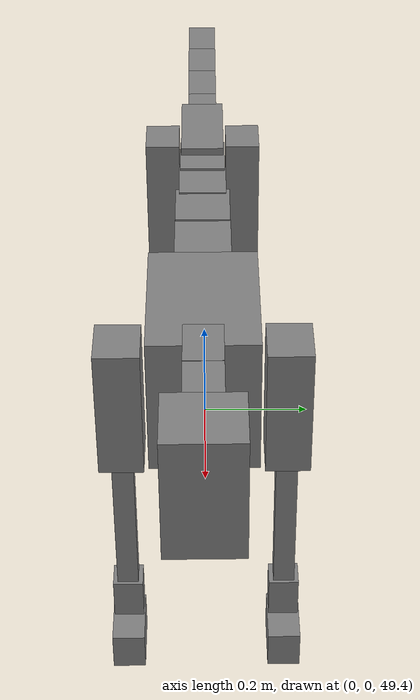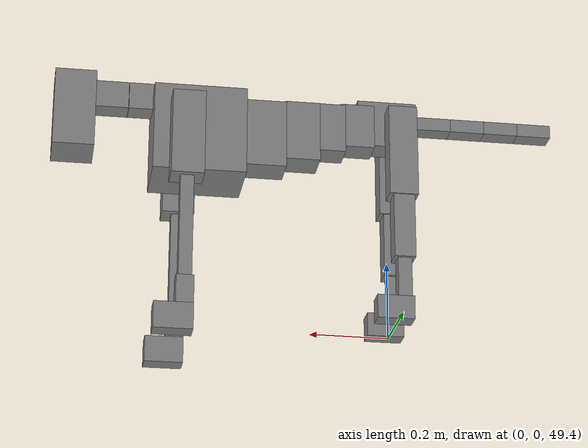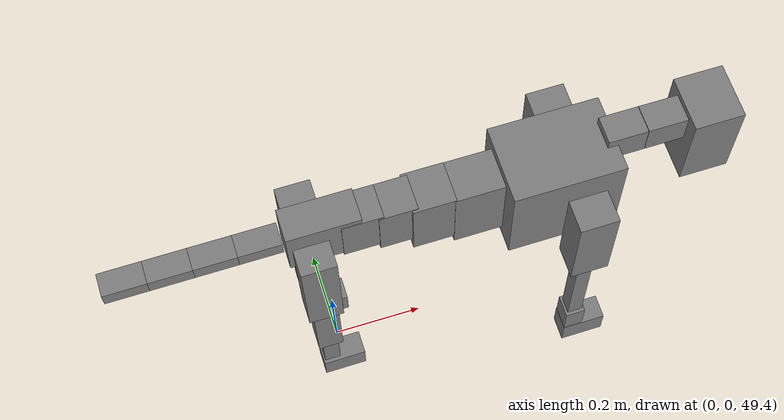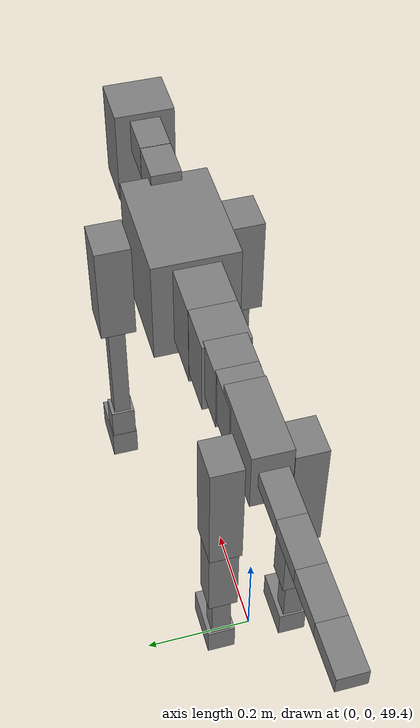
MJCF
<mujoco model="dog">

    <default>
        <joint armature="0.02" stiffness="1" damping="0.2" limited="true"/>
        <geom condim="3" friction="1 0.05 0.05" margin="0.01"/>
        <motor ctrllimited="true" ctrlrange="-1.0 1.0" forcelimited="true" gear="50"/>
    </default>

    <compiler inertiafromgeom="true" angle="radian"/>

    <option timestep="0.016" iterations="50" tolerance="1e-10" solver="Newton" jacobian="dense" cone="pyramidal"/>

    <size nconmax="20000" njmax="60000" nstack="5000000"/>
    <visual>
        <map force="0.1" zfar="30"/>
        <rgba haze="0.15 0.25 0.35 1"/>
        <quality shadowsize="2048"/>
        <global offwidth="800" offheight="800"/>
    </visual>

    <asset>
        <texture type="skybox" builtin="gradient" rgb1="0.3 0.5 0.7" rgb2="0 0 0" width="512" height="512"/>
        <texture name="texplane" type="2d" builtin="checker" rgb1=".2 .3 .4" rgb2=".1 0.15 0.2" width="512" height="512"
                 mark="cross" markrgb=".8 .8 .8"/>
        <texture name="texgeom" type="cube" builtin="flat" mark="cross" width="127" height="1278" rgb1="0.8 0.6 0.4"
                 rgb2="0.8 0.6 0.4" markrgb="1 1 1" random="0.01"/>

        <material name="matplane" reflectance="0.3" texture="texplane" texrepeat="1 1" texuniform="true"/>
        <material name="matgeom" texture="texgeom" texuniform="true" rgba="0.8 0.6 .4 1"/>
    </asset>

    <worldbody>
        <geom name="floor" pos="0 0 0" size="0 0 .25" type="plane" material="matplane" condim="3"/>

        <light directional="false" diffuse=".2 .2 .2" specular="0 0 0" pos="0 0 5" dir="0 0 -1" castshadow="false"/>
        <light mode="targetbodycom" target="torso" directional="false" diffuse=".8 .8 .8" specular="0.3 0.3 0.3"
               pos="0 0 4.0" dir="0 0 -1"/>

        <body name="root" pos="0 0 50">
            <freejoint name="root_1"/>
            <geom type="box" pos="0 0 -0.02" size="0.0774  0.0358  0.063" density="2030"/>

            <body name="spine1" pos="0.054 0 0">
                <joint name="spine1_y" axis="0 1 0" range="0 0.7" limited="true"/>
                <geom type="box" pos="0.02375 0 -0.03" size="0.04375  0.0375  0.05985" density="2030"/>

                <body name="spine2" pos="0.0612 0 0">
                    <joint name="spine2_y" axis="0 1 0" range="-0.15 0.15" limited="true"/>
                    <geom type="box" pos="0.03555  0  -0.04" size="0.04055  0.039  0.06615" density="2030"/>

                    <body name="spine3" pos="0.0730 0 0">
                        <joint name="spine3_y" axis="0 1 0" range="-0.15 0.15" limited="true"/>
                        <geom type="box" pos="0.03555  0  -0.057" size="0.04555  0.0445  0.081" density="2030"/>

                        <body name="spine4" pos="0.0780 0 0">
                            <joint name="spine4_y" axis="0 1 0" range="-0.15 0.15" limited="true"/>
                            <geom type="box" pos="0.05265  0  -0.07" size="0.05265  0.045  0.09135" density="2030"/>

                            <body name="torso" pos="0.1082 0 0">
                                <joint name="torso_y" axis="0 1 0" range="-0.15 0.15" limited="true"/>
                                <geom type="box" pos="0.11925  0  -0.085" size="0.11925  0.085  0.11745"
                                      density="2030"/>

                                <body name="neck1" pos="0.2160  0   0.0180">
                                    <joint name="neck1_y" axis="0 1 0" range="-1.2  -1" limited="true"/>
                                    <geom type="box" pos="0.0423  0  0" size="0.0423  0.03  0.036" density="2325"/>

                                    <body name="neck2" pos="0.0853  0  0">
                                        <joint name="neck2_y" axis="0 1 0" range="0.1  0" limited="true"/>
                                        <geom type="box" pos="0.0423  0  0" size="0.0423  0.03  0.036" density="2325"/>

                                        <body name="head" pos="0.0853  0  0">
                                            <joint name="head_y" axis="0 1 0" range="-0.3  -0.2" limited="true"/>
                                            <geom type="box" pos="0.0531  0  -0.055" size="0.0531  0.06  0.1044"
                                                  density="4030"/>

                                        </body>
                                    </body>
                                </body>

                                <body name="front_shoulder" pos="0.156  0   -0.0480">
                                    <joint name="front_shoulder_y" axis="0 1 0" range="-1 1.5" limited="true"/>
                                    <geom type="box" pos="0 0.13 -0.0863" size="0.0416  0.0355  0.1129" density="1158"/>
                                    <geom type="box" pos="0 -0.13 -0.0863" size="0.0416  0.0355  0.1129"
                                          density="1158"/>

                                    <body name="front_elbow" pos="0  0  -0.1725">
                                        <joint name="front_elbow_y" axis="0 1 0" range="-2 0" limited="true"/>
                                        <geom type="box" pos="0 0.13 -0.1535" size="0.0169  0.0173  0.1535"
                                              density="1081"/>
                                        <geom type="box" pos="0 -0.13 -0.1535" size="0.0169  0.0173  0.1535"
                                              density="1081"/>

                                        <body name="front_wrist" pos="0  0  -0.3069">
                                            <joint name="front_wrist_y" axis="0 1 0" range="-0.2 0" limited="true"/>
                                            <geom type="box" pos="0 0.13 -0.0373" size="0.0222  0.0247  0.0504"
                                                  density="1664"/>
                                            <geom type="box" pos="0 -0.13 -0.0373" size="0.0222  0.0247  0.0504"
                                                  density="1664"/>

                                            <body name="front_finger_end" pos="0  0  -0.0745">
                                                <joint name="front_finger_y" axis="0 1 0" range="-0.4 1"
                                                       limited="true"/>
                                                <geom type="box" pos="0.0267  0.13  -0.0189"
                                                      size="0.0490  0.0267  0.0339" density="1515"/>
                                                <geom type="box" pos="0.0267  -0.13  -0.0189"
                                                      size="0.0490  0.0267  0.0339" density="1515"/>

                                            </body>

                                        </body>
                                    </body>
                                </body>

                            </body>
                        </body>
                    </body>
                </body>
            </body>

            <body name="back_hip" pos="-0.03 0 -0.018">
                <joint name="back_hip_y" axis="0 1 0" range="-1.5 0.3" limited="true"/>
                <geom type="box" pos="0 0.07 -0.1001" size="0.0372  0.0292  0.1229" density="1154"/>
                <geom type="box" pos="0 -0.07 -0.1001" size="0.0372  0.0292  0.1229" density="1154"/>

                <body name="back_knee" pos="0  0  -0.2003">
                    <joint name="back_knee_y" axis="0 1 0" range="0 2.8" limited="true"/>
                    <geom type="box" pos="0 0.07 -0.0886" size="0.0272  0.0268  0.1042" density="1227"/>
                    <geom type="box" pos="0 -0.07 -0.0886" size="0.0272  0.0268  0.1042" density="1227"/>

                    <body name="back_ankle" pos="0  0  -0.1772">
                        <joint name="back_ankle_y" axis="0 1 0" range="-2.2 0" limited="true"/>
                        <geom type="box" pos="0 0.07 -0.0681" size="0.0178  0.0178  0.0794" density="1284"/>
                        <geom type="box" pos="0 -0.07 -0.0681" size="0.0178  0.0178  0.0794" density="1284"/>

                        <body name="back_toe_end" pos="0  0  -0.1362">
                            <joint name="back_toe_y" axis="0 1 0" range="-0.4 1" limited="true"/>
                            <geom type="box" pos="0.0258  0.07  -0.0154" size="0.0473  0.0258  0.0304" density="1515"/>
                            <geom type="box" pos="0.0258  -0.07  -0.0154" size="0.0473  0.0258  0.0304" density="1515"/>

                        </body>
                    </body>
                </body>
            </body>

            <body name="tail1" pos="-0.074 0 -0.006">
                <joint name="tail1_y" axis="0 1 0" range="-0.2 0.2" limited="true"/>
                <geom type="box" pos="-0.0536  0  0" size="0.045  0.025  0.0175" density="1587"/>

                <body name="tail2" pos="-0.09 0 0">
                    <joint name="tail2_y" axis="0 1 0" range="-0.2 0.2" limited="true"/>
                    <geom type="box" pos="-0.0536  0  0" size="0.045  0.025  0.0175" density="1587"/>

                    <body name="tail3" pos="-0.09 0 0">
                        <joint name="tail3_y" axis="0 1 0" range="-0.2 0.2" limited="true"/>
                        <geom type="box" pos="-0.0536  0  0" size="0.045  0.025  0.0175" density="1587"/>

                        <body name="tail4" pos="-0.09 0 0">
                            <joint name="tail4_y" axis="0 1 0" range="-0.2 0.2" limited="true"/>
                            <geom type="box" pos="-0.0536  0  0" size="0.045  0.025  0.0175" density="1587"/>

                        </body>
                    </body>
                </body>
            </body>
        </body>
    </worldbody>

    <actuator>
        <motor joint="spine1_y" forcerange="-150 150     "/>
        <motor joint="spine2_y" forcerange="-150 150     "/>
        <motor joint="spine3_y" forcerange="-150 150     "/>
        <motor joint="spine4_y" forcerange="-150 150     "/>
        <motor joint="torso_y" forcerange="-150 150     "/>
        <motor joint="neck1_y" forcerange="-100 100       "/>
        <motor joint="neck2_y" forcerange="-100 100       "/>
        <motor joint="head_y" forcerange="-150 150       "/>
        <motor joint="front_shoulder_y" forcerange="-148.81 188.03"/>
        <motor joint="front_elbow_y" forcerange="-113.71 111.86"/>
        <motor joint="front_wrist_y" forcerange="-71.78 125.99"/>
        <motor joint="front_finger_y" forcerange="-72.97 29.50"/>
        <motor joint="back_hip_y" forcerange="-293.16 295.62"/>
        <motor joint="back_knee_y" forcerange="-264.30 324.98"/>
        <motor joint="back_angle_y" forcerange="-54.21 130.84"/>
        <motor joint="back_toe_y" forcerange="-58.85 67.44"/>
        <motor joint="tail1_y" forcerange="-50 50     "/>
        <motor joint="tail2_y" forcerange="-50 50     "/>
        <motor joint="tail3_y" forcerange="-50 50     "/>
        <motor joint="tail4_y" forcerange="-50 50     "/>
    </actuator>
</mujoco>
